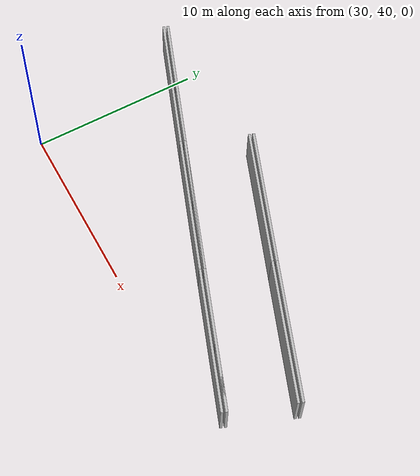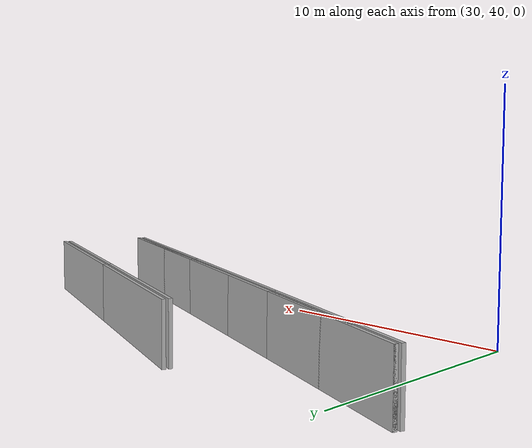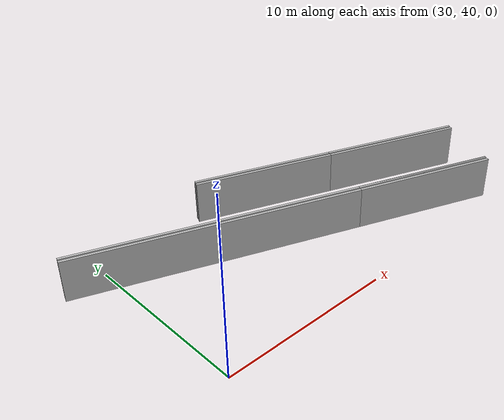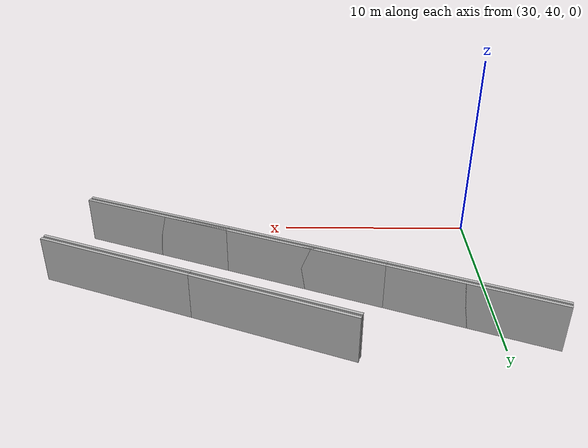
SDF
<?xml version="1.0" ?>
<sdf version="1.6">
  <model name="sps_0708">
    <pose frame="">0 0 0 0 -0 0</pose>
    <static>1</static>
    <self_collide>0</self_collide>
    <allow_auto_disable>0</allow_auto_disable>
    <link name="Wall6682">
      <kinematic>0</kinematic>
      <gravity>1</gravity>
      <self_collide>0</self_collide>
      <collision name="collision">
        <geometry>
          <box>
            <size>8.26103 0.15 2.5</size>
          </box>
        </geometry>
        <pose frame="">0 0 0 0 -0 0</pose>
      </collision>
      <visual name="visual">
        <geometry>
          <box>
            <size>8.26103 0.15 2.5</size>
          </box>
        </geometry>
        <pose frame="">0 0 0 0 -0 0</pose>
        <cast_shadows>1</cast_shadows>
        <transparency>0.0</transparency>
      </visual>
      <pose frame="">46.8177 42.5849 1.25 0 -0 2.78026</pose>
    </link>
    <link name="Wall6683">
      <kinematic>0</kinematic>
      <gravity>1</gravity>
      <self_collide>0</self_collide>
      <collision name="collision">
        <geometry>
          <box>
            <size>8.26114 0.15 2.5</size>
          </box>
        </geometry>
        <pose frame="">0 0 0 0 -0 0</pose>
      </collision>
      <visual name="visual">
        <geometry>
          <box>
            <size>8.26114 0.15 2.5</size>
          </box>
        </geometry>
        <pose frame="">0 0 0 0 -0 0</pose>
        <cast_shadows>1</cast_shadows>
        <transparency>0.0</transparency>
      </visual>
      <pose frame="">39.0935 45.5144 1.25 0 -0 2.77792</pose>
    </link>
    <link name="Wall6684">
      <kinematic>0</kinematic>
      <gravity>1</gravity>
      <self_collide>0</self_collide>
      <collision name="collision">
        <geometry>
          <box>
            <size>8.26114 0.15 2.5</size>
          </box>
        </geometry>
        <pose frame="">0 0 0 0 -0 0</pose>
      </collision>
      <visual name="visual">
        <geometry>
          <box>
            <size>8.26114 0.15 2.5</size>
          </box>
        </geometry>
        <pose frame="">0 0 0 0 -0 0</pose>
        <cast_shadows>1</cast_shadows>
        <transparency>0.0</transparency>
      </visual>
      <pose frame="">31.3762 48.4622 1.25 0 -0 2.77553</pose>
    </link>
    <link name="Wall6717">
      <kinematic>0</kinematic>
      <gravity>1</gravity>
      <self_collide>0</self_collide>
      <collision name="collision">
        <geometry>
          <box>
            <size>8.25168 0.15 2.5</size>
          </box>
        </geometry>
        <pose frame="">0 0 0 0 -0 0</pose>
      </collision>
      <visual name="visual">
        <geometry>
          <box>
            <size>8.25168 0.15 2.5</size>
          </box>
        </geometry>
        <pose frame="">0 0 0 0 -0 0</pose>
        <cast_shadows>1</cast_shadows>
        <transparency>0.0</transparency>
      </visual>
      <pose frame="">40.4502 49.0205 1.25 0 0 -0.363678</pose>
    </link>
    <link name="Wall6718">
      <kinematic>0</kinematic>
      <gravity>1</gravity>
      <self_collide>0</self_collide>
      <collision name="collision">
        <geometry>
          <box>
            <size>8.2516 0.15 2.5</size>
          </box>
        </geometry>
        <pose frame="">0 0 0 0 -0 0</pose>
      </collision>
      <visual name="visual">
        <geometry>
          <box>
            <size>8.2516 0.15 2.5</size>
          </box>
        </geometry>
        <pose frame="">0 0 0 0 -0 0</pose>
        <cast_shadows>1</cast_shadows>
        <transparency>0.0</transparency>
      </visual>
      <pose frame="">48.1656 46.0944 1.25 0 0 -0.361317</pose>
    </link>
    <link name="Wall18369">
      <kinematic>0</kinematic>
      <gravity>1</gravity>
      <self_collide>0</self_collide>
      <collision name="collision">
        <geometry>
          <box>
            <size>8.25168 0.15 2.5</size>
          </box>
        </geometry>
        <pose frame="">0 0 0 0 -0 0</pose>
      </collision>
      <visual name="visual">
        <geometry>
          <box>
            <size>8.25168 0.15 2.5</size>
          </box>
        </geometry>
        <pose frame="">0 0 0 0 -0 0</pose>
        <cast_shadows>1</cast_shadows>
        <transparency>0.0</transparency>
      </visual>
      <pose frame="">40.4502 49.0205 1.25 0 0 -0.363678</pose>
    </link>
    <link name="Wall18370">
      <kinematic>0</kinematic>
      <gravity>1</gravity>
      <self_collide>0</self_collide>
      <collision name="collision">
        <geometry>
          <box>
            <size>8.2516 0.15 2.5</size>
          </box>
        </geometry>
        <pose frame="">0 0 0 0 -0 0</pose>
      </collision>
      <visual name="visual">
        <geometry>
          <box>
            <size>8.2516 0.15 2.5</size>
          </box>
        </geometry>
        <pose frame="">0 0 0 0 -0 0</pose>
        <cast_shadows>1</cast_shadows>
        <transparency>0.0</transparency>
      </visual>
      <pose frame="">48.1656 46.0944 1.25 0 0 -0.361317</pose>
    </link>
    <link name="Wall35056">
      <kinematic>0</kinematic>
      <gravity>1</gravity>
      <self_collide>0</self_collide>
      <collision name="collision">
        <geometry>
          <box>
            <size>8.25097 0.15 2.5</size>
          </box>
        </geometry>
        <pose frame="">0 0 0 0 -0 0</pose>
      </collision>
      <visual name="visual">
        <geometry>
          <box>
            <size>8.25097 0.15 2.5</size>
          </box>
        </geometry>
        <pose frame="">0 0 0 0 -0 0</pose>
        <cast_shadows>1</cast_shadows>
        <transparency>0.0</transparency>
      </visual>
      <pose frame="">40.5405 49.2535 1.25 0 0 -0.363703</pose>
    </link>
    <link name="Wall35057">
      <kinematic>0</kinematic>
      <gravity>1</gravity>
      <self_collide>0</self_collide>
      <collision name="collision">
        <geometry>
          <box>
            <size>8.2509 0.15 2.5</size>
          </box>
        </geometry>
        <pose frame="">0 0 0 0 -0 0</pose>
      </collision>
      <visual name="visual">
        <geometry>
          <box>
            <size>8.2509 0.15 2.5</size>
          </box>
        </geometry>
        <pose frame="">0 0 0 0 -0 0</pose>
        <cast_shadows>1</cast_shadows>
        <transparency>0.0</transparency>
      </visual>
      <pose frame="">48.2552 46.3276 1.25 0 0 -0.361301</pose>
    </link>
    <link name="Wall37890">
      <kinematic>0</kinematic>
      <gravity>1</gravity>
      <self_collide>0</self_collide>
      <collision name="collision">
        <geometry>
          <box>
            <size>8.2618 0.15 2.5</size>
          </box>
        </geometry>
        <pose frame="">0 0 0 0 -0 0</pose>
      </collision>
      <visual name="visual">
        <geometry>
          <box>
            <size>8.2618 0.15 2.5</size>
          </box>
        </geometry>
        <pose frame="">0 0 0 0 -0 0</pose>
        <cast_shadows>1</cast_shadows>
        <transparency>0.0</transparency>
      </visual>
      <pose frame="">31.2855 48.2293 1.25 0 0 -0.366059</pose>
    </link>
    <link name="Wall37891">
      <kinematic>0</kinematic>
      <gravity>1</gravity>
      <self_collide>0</self_collide>
      <collision name="collision">
        <geometry>
          <box>
            <size>8.26155 0.15 2.5</size>
          </box>
        </geometry>
        <pose frame="">0 0 0 0 -0 0</pose>
      </collision>
      <visual name="visual">
        <geometry>
          <box>
            <size>8.26155 0.15 2.5</size>
          </box>
        </geometry>
        <pose frame="">0 0 0 0 -0 0</pose>
        <cast_shadows>1</cast_shadows>
        <transparency>0.0</transparency>
      </visual>
      <pose frame="">39.0033 45.2813 1.25 0 0 -0.363682</pose>
    </link>
    <link name="Wall37892">
      <kinematic>0</kinematic>
      <gravity>1</gravity>
      <self_collide>0</self_collide>
      <collision name="collision">
        <geometry>
          <box>
            <size>8.26175 0.15 2.5</size>
          </box>
        </geometry>
        <pose frame="">0 0 0 0 -0 0</pose>
      </collision>
      <visual name="visual">
        <geometry>
          <box>
            <size>8.26175 0.15 2.5</size>
          </box>
        </geometry>
        <pose frame="">0 0 0 0 -0 0</pose>
        <cast_shadows>1</cast_shadows>
        <transparency>0.0</transparency>
      </visual>
      <pose frame="">46.728 42.3515 1.25 0 0 -0.36135</pose>
    </link>
    <link name="Wall37973">
      <kinematic>0</kinematic>
      <gravity>1</gravity>
      <self_collide>0</self_collide>
      <collision name="collision">
        <geometry>
          <box>
            <size>8.26114 0.15 2.5</size>
          </box>
        </geometry>
        <pose frame="">0 0 0 0 -0 0</pose>
      </collision>
      <visual name="visual">
        <geometry>
          <box>
            <size>8.26114 0.15 2.5</size>
          </box>
        </geometry>
        <pose frame="">0 0 0 0 -0 0</pose>
        <cast_shadows>1</cast_shadows>
        <transparency>0.0</transparency>
      </visual>
      <pose frame="">31.3762 48.4622 1.25 0 0 -0.366058</pose>
    </link>
    <link name="Wall37974">
      <kinematic>0</kinematic>
      <gravity>1</gravity>
      <self_collide>0</self_collide>
      <collision name="collision">
        <geometry>
          <box>
            <size>8.26114 0.15 2.5</size>
          </box>
        </geometry>
        <pose frame="">0 0 0 0 -0 0</pose>
      </collision>
      <visual name="visual">
        <geometry>
          <box>
            <size>8.26114 0.15 2.5</size>
          </box>
        </geometry>
        <pose frame="">0 0 0 0 -0 0</pose>
        <cast_shadows>1</cast_shadows>
        <transparency>0.0</transparency>
      </visual>
      <pose frame="">39.0935 45.5144 1.25 0 0 -0.363677</pose>
    </link>
    <link name="Wall37975">
      <kinematic>0</kinematic>
      <gravity>1</gravity>
      <self_collide>0</self_collide>
      <collision name="collision">
        <geometry>
          <box>
            <size>8.26103 0.15 2.5</size>
          </box>
        </geometry>
        <pose frame="">0 0 0 0 -0 0</pose>
      </collision>
      <visual name="visual">
        <geometry>
          <box>
            <size>8.26103 0.15 2.5</size>
          </box>
        </geometry>
        <pose frame="">0 0 0 0 -0 0</pose>
        <cast_shadows>1</cast_shadows>
        <transparency>0.0</transparency>
      </visual>
      <pose frame="">46.8177 42.5849 1.25 0 0 -0.361328</pose>
    </link>
  </model>
</sdf>
